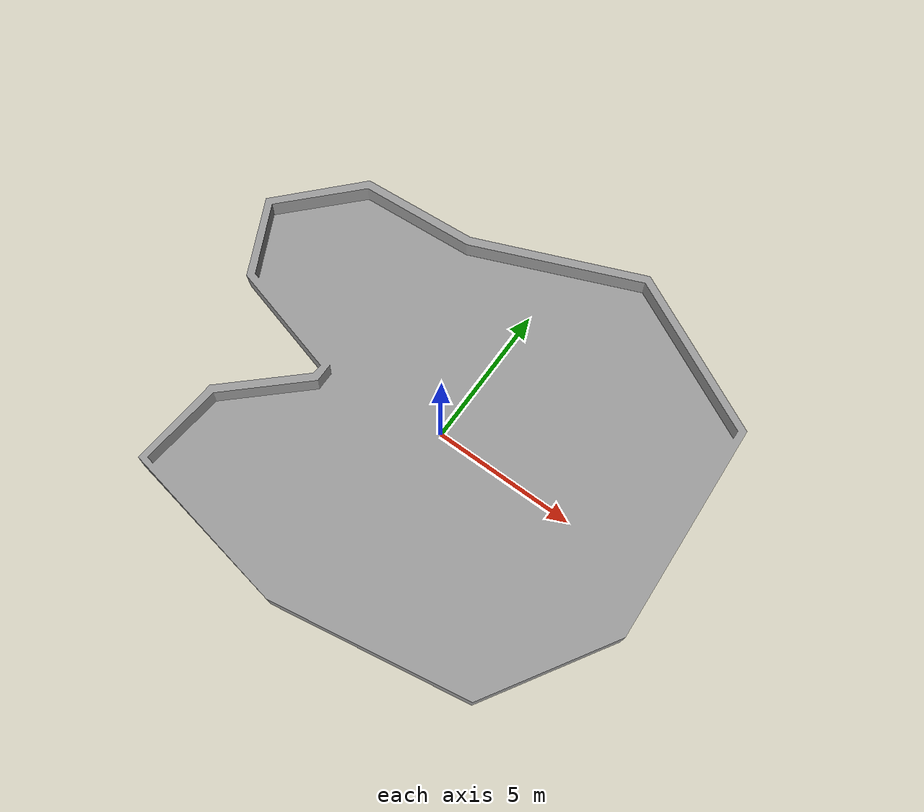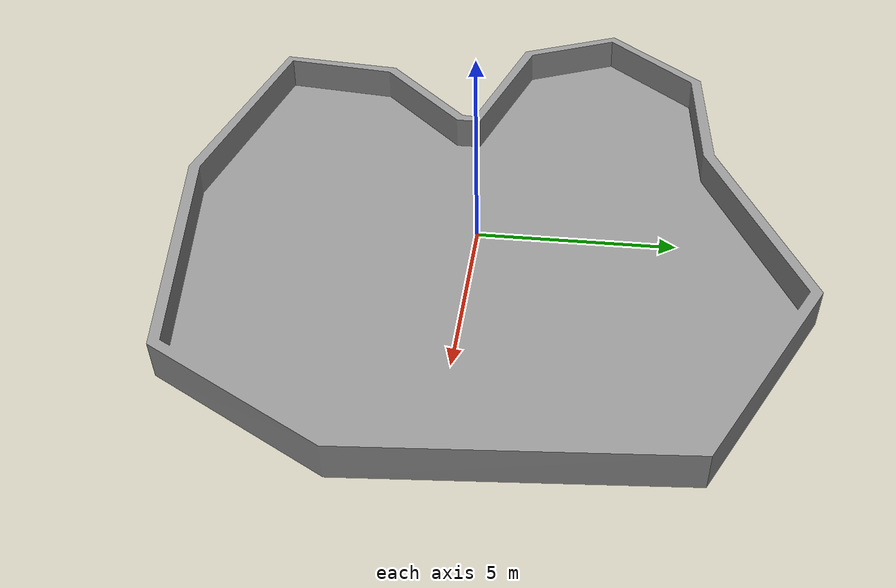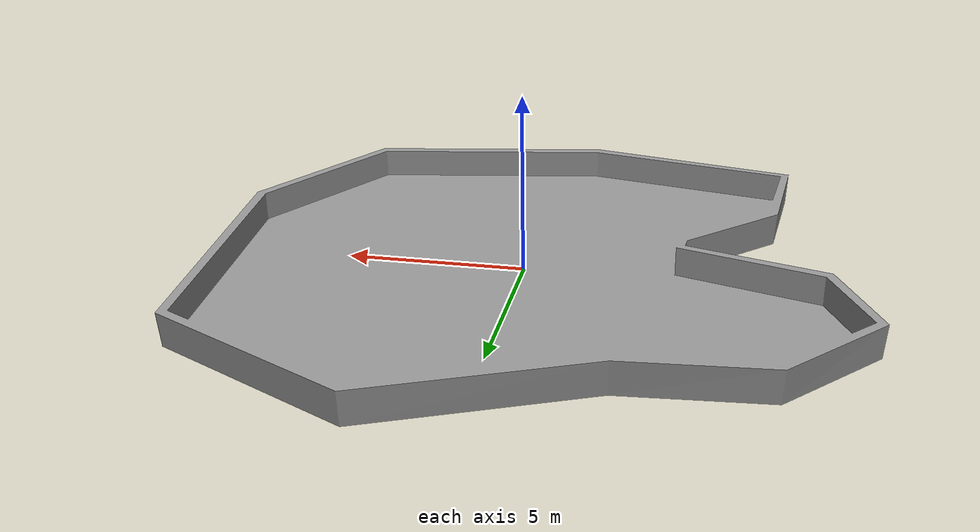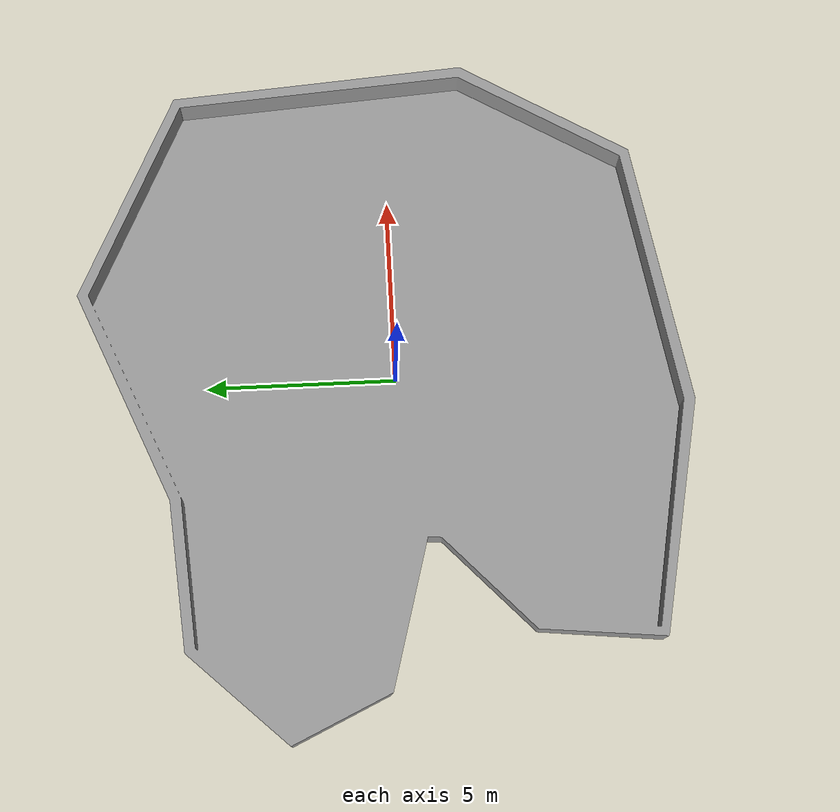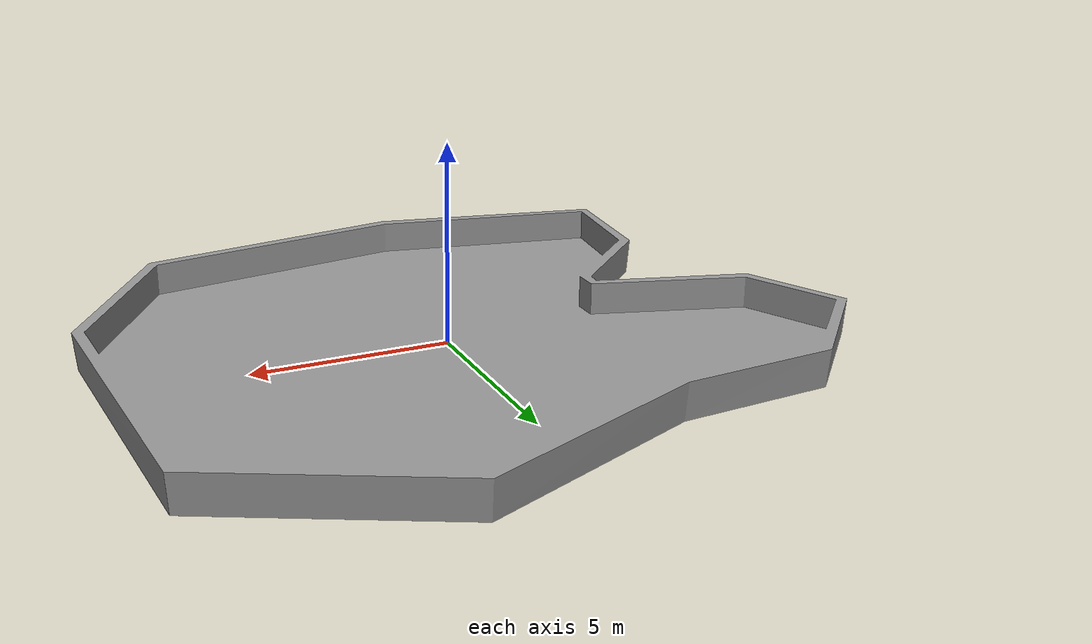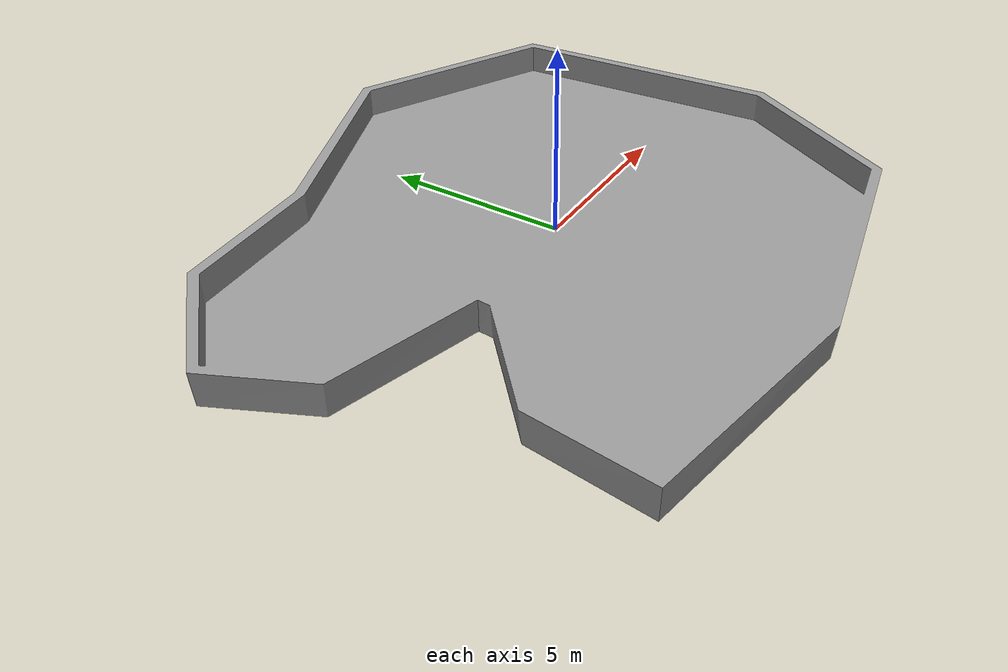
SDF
<?xml version="1.0" ?>
<sdf version="1.5">
  <world name="default">
    <include>
      <uri>model://sun</uri>
    </include>
    <include>
      <uri>model://client_garden</uri>
    </include>
  </world>
</sdf>

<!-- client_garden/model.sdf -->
<sdf version="1.5">
  <model name="house_plan">
    <static>true</static>
    <pose>0 0 0 0 0 0</pose>
    <link name="walls">
      <collision name="collision">
        <geometry>
          <mesh>
            <uri>model://client_garden/meshes/client_garden.stl</uri>
            <scale>1 1 1</scale>
          </mesh>
        </geometry>
        <surface>
          <friction>
            <ode>
              <mu>100</mu>
              <mu2>50</mu2>
            </ode>
          </friction>
        </surface>
      </collision>
      <visual name="visual">
        <geometry>
          <mesh>
            <uri>model://client_garden/meshes/client_garden.stl</uri>
            <scale>1 1 1</scale>
          </mesh>
        </geometry>
        <cast_shadows>true</cast_shadows>
        <material>
          <script>
            <uri>file://media/materials/scripts/gazebo.material</uri>
            <name>Gazebo/Grey</name>
          </script>
        </material>
      </visual>
    </link>
  </model>
</sdf>
